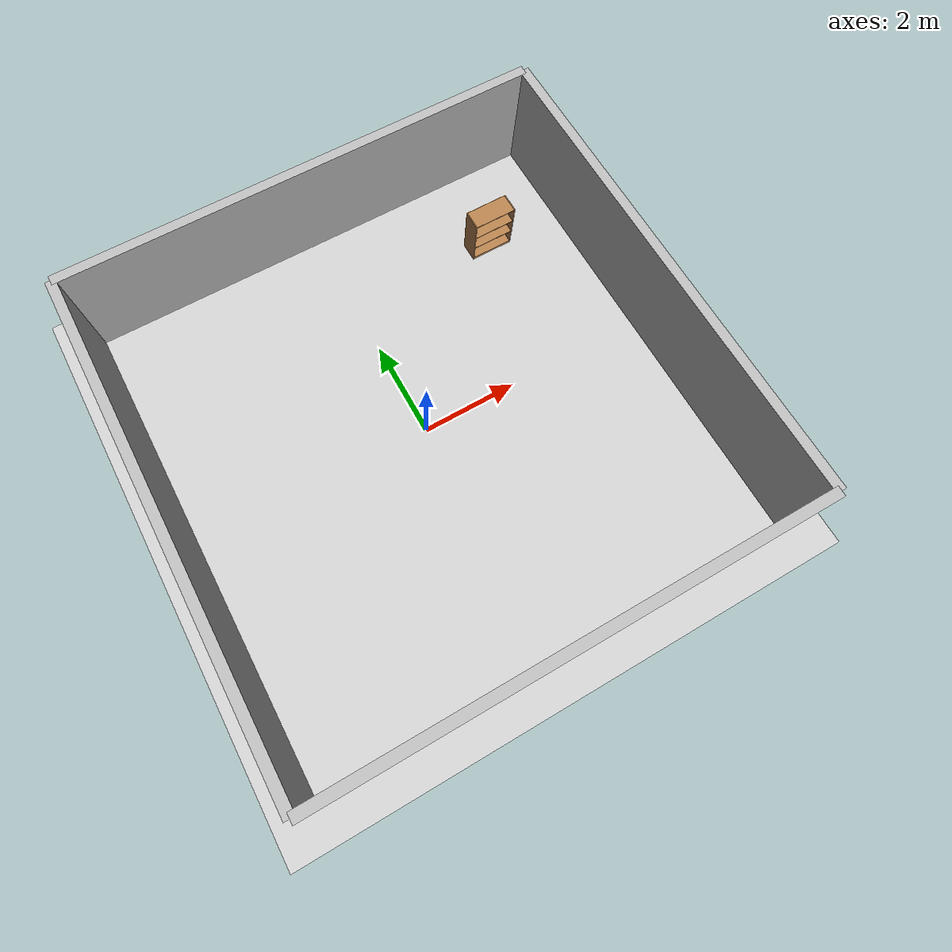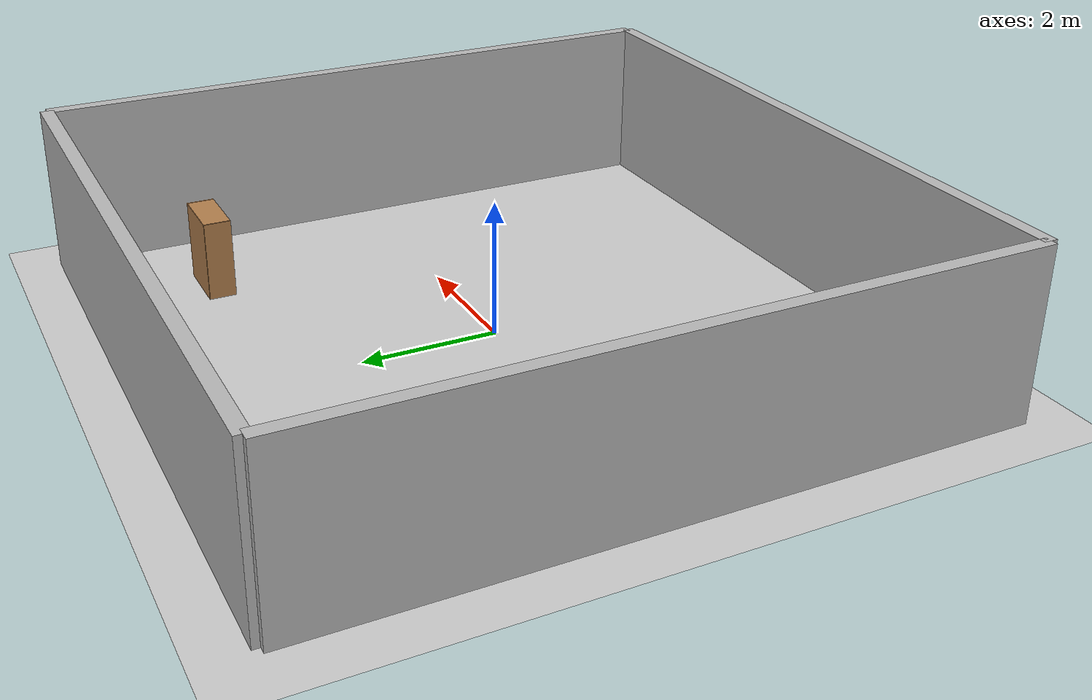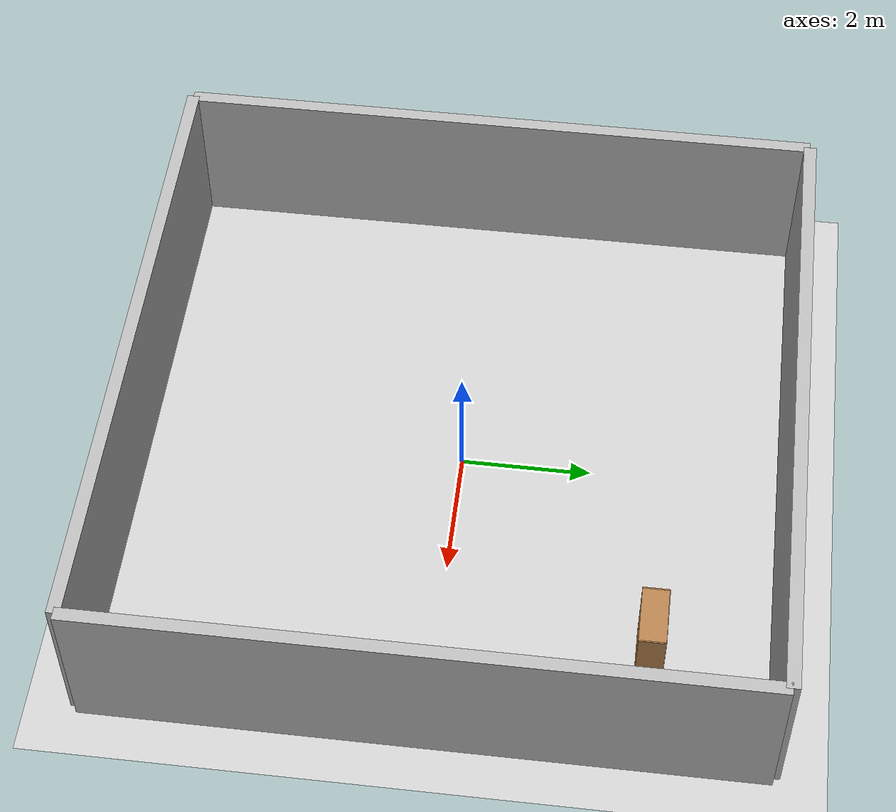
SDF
<sdf version="1.7">
 <world name="bedroom_world">
  <model name="ground_plane">
   <static>1</static>
   <link name="link">
    <collision name="collision">
     <geometry><plane><normal>0 0 1</normal><size>100 100</size></plane></geometry>
     <surface><friction><ode><mu>100</mu><mu2>50</mu2></ode></friction></surface>
    </collision>
    <visual name="visual">
     <cast_shadows>0</cast_shadows>
     <geometry><plane><normal>0 0 1</normal><size>100 100</size></plane></geometry>
     <material>
      <script><uri>file://media/materials/scripts/gazebo.material</uri><name>Gazebo/Grey</name></script>
     </material>
    </visual>
   </link>
  </model>
  <model name="wall_1">
   <static>1</static>
   <link name="link">
    <pose>0 5 1.25 0 -0 0</pose>
    <collision name="collision"><geometry><box><size>10 0.2 2.5</size></box></geometry></collision>
    <visual name="visual">
     <geometry>
      <box><size>10 0.2 2.5</size></box>
      <material>
       <script><uri>file://media/materials/scripts/gazebo.material</uri><name>Gazebo/Grey</name></script>
      </material>
     </geometry>
    </visual>
   </link>
  </model>
  <model name="wall_2">
   <static>1</static>
   <link name="link">
    <pose>0 -5 1.25 0 -0 0</pose>
    <collision name="collision"><geometry><box><size>10 0.2 2.5</size></box></geometry></collision>
    <visual name="visual">
     <geometry>
      <box><size>10 0.2 2.5</size></box>
      <material>
       <script><uri>file://media/materials/scripts/gazebo.material</uri><name>Gazebo/Grey</name></script>
      </material>
     </geometry>
    </visual>
   </link>
  </model>
  <model name="wall_3">
   <static>1</static>
   <link name="link">
    <pose>5 0 1.25 0 -0 0</pose>
    <collision name="collision"><geometry><box><size>0.2 10 2.5</size></box></geometry></collision>
    <visual name="visual">
     <geometry>
      <box><size>0.2 10 2.5</size></box>
      <material>
       <script><uri>file://media/materials/scripts/gazebo.material</uri><name>Gazebo/Grey</name></script>
      </material>
     </geometry>
    </visual>
   </link>
  </model>
  <model name="wall_4">
   <static>1</static>
   <link name="link">
    <pose>-5 0 1.25 0 -0 0</pose>
    <collision name="collision"><geometry><box><size>0.2 10 2.5</size></box></geometry></collision>
    <visual name="visual">
     <geometry>
      <box><size>0.2 10 2.5</size></box>
      <material>
       <script><uri>file://media/materials/scripts/gazebo.material</uri><name>Gazebo/Grey</name></script>
      </material>
     </geometry>
    </visual>
   </link>
  </model>
  <model name="bookshelf">
   <static>1</static>
   <link name="link">
    <inertial><mass>1</mass></inertial>
    <collision name="back">
     <pose>0 0.005 0.6 0 -0 0</pose>
     <geometry><box><size>0.9 0.01 1.2</size></box></geometry>
    </collision>
    <visual name="visual1">
     <pose>0 0.005 0.6 0 -0 0</pose>
     <geometry><box><size>0.9 0.01 1.2</size></box></geometry>
     <material>
      <script><uri>file://media/materials/scripts/gazebo.material</uri><name>Gazebo/Wood</name></script>
     </material>
    </visual>
    <collision name="left_side">
     <pose>0.45 -0.195 0.6 0 -0 0</pose>
     <geometry><box><size>0.02 0.4 1.2</size></box></geometry>
    </collision>
    <visual name="visual2">
     <pose>0.45 -0.195 0.6 0 -0 0</pose>
     <geometry><box><size>0.02 0.4 1.2</size></box></geometry>
     <material>
      <script><uri>file://media/materials/scripts/gazebo.material</uri><name>Gazebo/Wood</name></script>
     </material>
    </visual>
    <collision name="right_side">
     <pose>-0.45 -0.195 0.6 0 -0 0</pose>
     <geometry><box><size>0.02 0.4 1.2</size></box></geometry>
    </collision>
    <visual name="visual3">
     <pose>-0.45 -0.195 0.6 0 -0 0</pose>
     <geometry><box><size>0.02 0.4 1.2</size></box></geometry>
     <material>
      <script><uri>file://media/materials/scripts/gazebo.material</uri><name>Gazebo/Wood</name></script>
     </material>
    </visual>
    <collision name="bottom">
     <pose>0 -0.195 0.03 0 -0 0</pose>
     <geometry><box><size>0.88 0.4 0.06</size></box></geometry>
    </collision>
    <visual name="visual4">
     <pose>0 -0.195 0.03 0 -0 0</pose>
     <geometry><box><size>0.88 0.4 0.06</size></box></geometry>
     <material>
      <script><uri>file://media/materials/scripts/gazebo.material</uri><name>Gazebo/Wood</name></script>
     </material>
    </visual>
    <collision name="top">
     <pose>0 -0.195 1.19 0 -0 0</pose>
     <geometry><box><size>0.88 0.4 0.02</size></box></geometry>
    </collision>
    <visual name="visual5">
     <pose>0 -0.195 1.19 0 -0 0</pose>
     <geometry><box><size>0.88 0.4 0.02</size></box></geometry>
     <material>
      <script><uri>file://media/materials/scripts/gazebo.material</uri><name>Gazebo/Wood</name></script>
     </material>
    </visual>
    <collision name="low_shelf">
     <pose>0 -0.195 0.43 0 -0 0</pose>
     <geometry><box><size>0.88 0.4 0.02</size></box></geometry>
    </collision>
    <visual name="visual6">
     <pose>0 -0.195 0.43 0 -0 0</pose>
     <geometry><box><size>0.88 0.4 0.02</size></box></geometry>
     <material>
      <script><uri>file://media/materials/scripts/gazebo.material</uri><name>Gazebo/Wood</name></script>
     </material>
    </visual>
    <collision name="high_shelf">
     <pose>0 -0.195 0.8 0 -0 0</pose>
     <geometry><box><size>0.88 0.4 0.02</size></box></geometry>
    </collision>
    <visual name="visual7">
     <pose>0 -0.195 0.8 0 -0 0</pose>
     <geometry><box><size>0.88 0.4 0.02</size></box></geometry>
     <material>
      <script><uri>file://media/materials/scripts/gazebo.material</uri><name>Gazebo/Wood</name></script>
     </material>
    </visual>
   </link>
   <pose>3.24203 3.33025 0 0 -0 0</pose>
  </model>
 </world>
</sdf>
